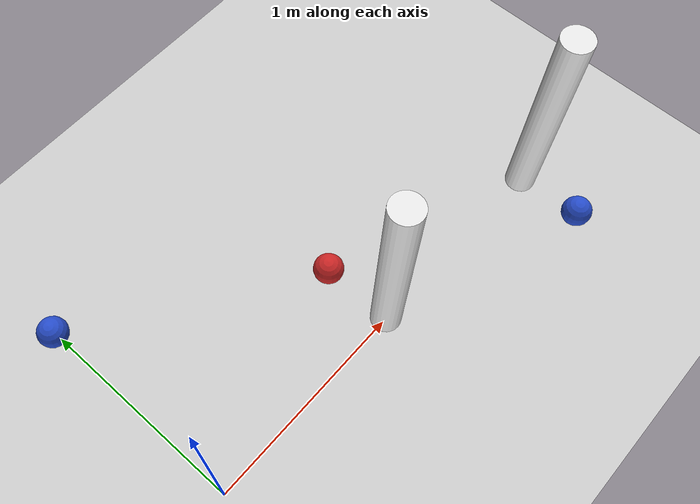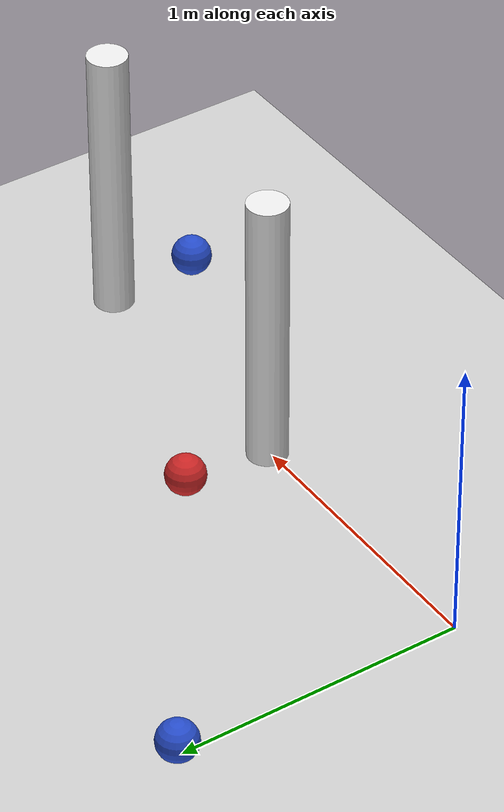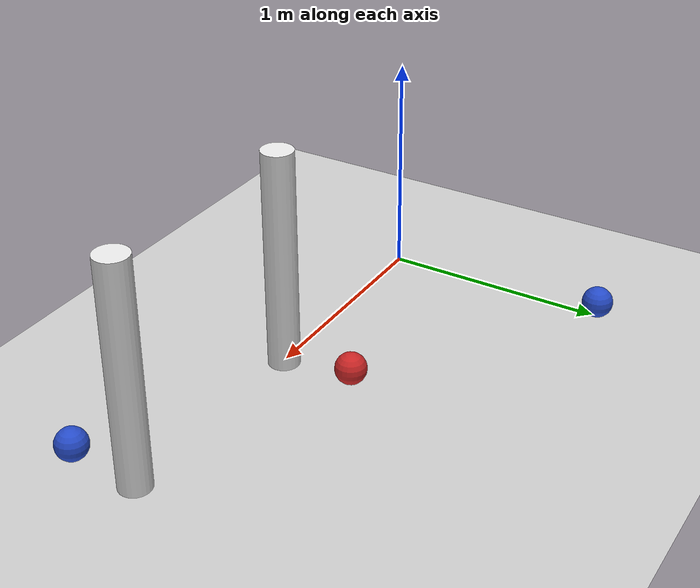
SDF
<sdf version="1.6">
 <world name="default">
  <model name="ground_plane">
   <static>1</static>
   <link name="link">
    <collision name="collision">
     <geometry><plane><normal>0 0 1</normal><size>100 100</size></plane></geometry>
     <surface><friction><ode><mu>100</mu><mu2>50</mu2></ode></friction></surface>
    </collision>
    <visual name="visual">
     <cast_shadows>0</cast_shadows>
     <geometry><plane><normal>0 0 1</normal><size>100 100</size></plane></geometry>
     <material>
      <script><uri>file://media/materials/scripts/gazebo.material</uri><name>Gazebo/Grey</name></script>
     </material>
    </visual>
   </link>
  </model>
  <light name="sun" type="directional">
   <pose>0 0 10 0 -0 0</pose>
   <diffuse>0.8 0.8 0.8 1</diffuse>
   <specular>0.1 0.1 0.1 1</specular>
   <attenuation>
    <range>1000</range>
    <constant>0.9</constant>
    <linear>0.01</linear>
    <quadratic>0.001</quadratic>
   </attenuation>
   <direction>-0.5 0.5 -1</direction>
  </light>
  <gravity>0 0 -9.8</gravity>
  <magnetic_field>6e-06 2.3e-05 -4.2e-05</magnetic_field>
  <atmosphere type="adiabatic"/>
  <physics name="default_physics" default="0" type="ode">
   <max_step_size>0.001</max_step_size>
   <real_time_factor>1</real_time_factor>
   <real_time_update_rate>1000</real_time_update_rate>
  </physics>
  <scene><ambient>0.4 0.4 0.4 1</ambient><background>0.7 0.7 0.7 1</background><shadows>1</shadows></scene>
  <spherical_coordinates>
   <surface_model>EARTH_WGS84</surface_model>
   <latitude_deg>0</latitude_deg>
   <longitude_deg>0</longitude_deg>
   <elevation>0</elevation>
   <heading_deg>0</heading_deg>
  </spherical_coordinates>
  <audio><device>default</device></audio>
  <model name="obstacle_3_clone_clone">
   <static>1</static>
   <pose>1.02432 0.005802 0.5 0 -0 0</pose>
   <link name="link">
    <collision name="collision">
     <geometry><cylinder><radius>0.07</radius><length>1</length></cylinder></geometry>
    </collision>
    <visual name="visual">
     <geometry><cylinder><radius>0.07</radius><length>1</length></cylinder></geometry>
     <material>
      <script><name>Gazebo/White</name><uri>file://media/materials/scripts/gazebo.material</uri></script>
     </material>
    </visual>
   </link>
  </model>
  <model name="red_ball_0_clone_clone_clone">
   <pose>1.0096 0.330185 0.07 0 -1e-06 7.6e-05</pose>
   <link name="link">
    <inertial>
     <mass>0.1</mass>
     <inertia><ixx>0.0001</ixx><ixy>0</ixy><ixz>0</ixz><iyy>0.0001</iyy><iyz>0</iyz><izz>0.0001</izz></inertia>
    </inertial>
    <collision name="collision">
     <geometry><cylinder><radius>0.07</radius><length>0.14</length></cylinder></geometry>
    </collision>
    <visual name="visual">
     <geometry><sphere><radius>0.07</radius></sphere></geometry>
     <material>
      <script><name>Gazebo/Red</name><uri>file://media/materials/scripts/gazebo.material</uri></script>
     </material>
    </visual>
   </link>
  </model>
  <model name="blue_ball_1_clone_clone_clone">
   <pose>1.98762 -0.329152 0.069993 -3.1e-05 -2.9e-05 -0.000123</pose>
   <link name="link">
    <inertial>
     <mass>0.1</mass>
     <inertia><ixx>0.0001</ixx><ixy>0</ixy><ixz>0</ixz><iyy>0.0001</iyy><iyz>0</iyz><izz>0.0001</izz></inertia>
    </inertial>
    <collision name="collision">
     <geometry><cylinder><radius>0.07</radius><length>0.14</length></cylinder></geometry>
    </collision>
    <visual name="visual">
     <geometry><sphere><radius>0.07</radius></sphere></geometry>
     <material>
      <script><name>Gazebo/Blue</name><uri>file://media/materials/scripts/gazebo.material</uri></script>
     </material>
    </visual>
   </link>
  </model>
  <model name="obstacle_3_clone_0_clone">
   <static>1</static>
   <pose>1.99647 -0.018674 0.5 0 -0 0</pose>
   <link name="link">
    <collision name="collision">
     <geometry><cylinder><radius>0.07</radius><length>1</length></cylinder></geometry>
    </collision>
    <visual name="visual">
     <geometry><cylinder><radius>0.07</radius><length>1</length></cylinder></geometry>
     <material>
      <script><name>Gazebo/White</name><uri>file://media/materials/scripts/gazebo.material</uri></script>
     </material>
    </visual>
   </link>
  </model>
  <model name="blue_ball_1_clone_clone_clone_clone">
   <pose>-0.005148 1.01774 0.07 0 -1e-06 -0.000122</pose>
   <link name="link">
    <inertial>
     <mass>0.1</mass>
     <inertia><ixx>0.0001</ixx><ixy>0</ixy><ixz>0</ixz><iyy>0.0001</iyy><iyz>0</iyz><izz>0.0001</izz></inertia>
    </inertial>
    <collision name="collision">
     <geometry><cylinder><radius>0.07</radius><length>0.14</length></cylinder></geometry>
    </collision>
    <visual name="visual">
     <geometry><sphere><radius>0.07</radius></sphere></geometry>
     <material>
      <script><name>Gazebo/Blue</name><uri>file://media/materials/scripts/gazebo.material</uri></script>
     </material>
    </visual>
   </link>
  </model>
 </world>
</sdf>
